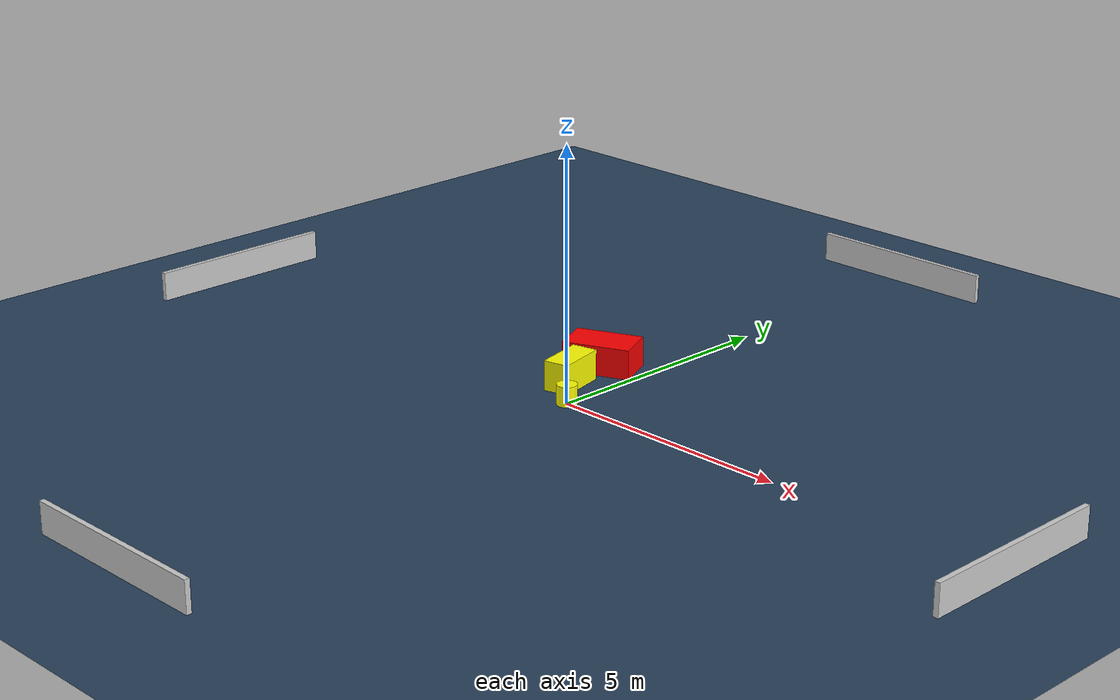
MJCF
<?xml version="1.0" ?>
<mujoco model="generated_environment">
  <option timestep="0.01" integrator="RK4" cone="elliptic"/>
  <default>
    <geom density="1"/>
  </default>
  <asset>
    <texture builtin="gradient" height="3072" name="skybox" rgb1="0.3 0.5 0.7" rgb2="0 0 0" type="skybox" width="512"/>
    <texture builtin="checker" height="300" name="groundplane" rgb1="0.2 0.3 0.4" rgb2="0.1 0.2 0.3" type="2d" width="300"/>
    <material name="groundplane" reflectance="0.2" texrepeat="5 5" texture="groundplane"/>
  </asset>
  <worldbody>
    <light dir="0 0 -1" directional="true" pos="0 0 1.5"/>
    <geom condim="3" friction="0.5 0.005 0.001" material="groundplane" name="floor" pos="0 0 0" size="0 0 0.05" type="plane"/>
    <body name="walls">
      <geom name="wall_1" condim="4" pos="-10.0 0.0 0.3" rgba="0.800000011920929 0.800000011920929 0.800000011920929 1.0" size="0.05 2.0 0.3" type="box"/>
      <geom name="wall_2" condim="4" pos="10.0 0.0 0.3" rgba="0.800000011920929 0.800000011920929 0.800000011920929 1.0" size="0.05 2.0 0.3" type="box"/>
      <geom name="wall_3" condim="4" pos="0.0 -10.0 0.3" rgba="0.800000011920929 0.800000011920929 0.800000011920929 1.0" size="2.0 0.05 0.3" type="box"/>
      <geom name="wall_4" condim="4" pos="0.0 10.0 0.3" rgba="0.800000011920929 0.800000011920929 0.800000011920929 1.0" size="2.0 0.05 0.3" type="box"/>
    </body>
    <body name="robot">
      <joint name="joint_x" type="slide" pos="0 0 0" axis="1 0 0"/>
      <joint name="joint_y" type="slide" pos="0 0 0" axis="0 1 0"/>
      <geom name="robot" type="cylinder" pos="0.0 0.0 0.2" size="0.2 0.2 0.0" mass="5.0" friction="1.0 0.005 0.0001" condim="4" rgba="1.0 1.0 0.0 1.0"/>
    </body>
    <body name="obstacle_1_movable">
      <geom name="obstacle_1_movable" condim="4" pos="-0.6459808682828881 0.7235985146142644 0.3" euler="0 0 102.64563947993403" friction="0.0 0.005 0.001" rgba="1.0 1.0 0.0 1.0" size="0.5093160643391292 0.2582887973282039 0.3" type="box" mass="0.1"/>
      <joint type="free"/>
    </body>
    <body name="obstacle_2_static">
      <geom name="obstacle_2_static" condim="4" pos="-0.8170412877923923 1.7679593520564938 0.3" euler="0 0 113.82090863088635" friction="0.0 0.005 0.001" rgba="1.0 0.0 0.0 1.0" size="0.41066877154503695 0.6809882561484274 0.3" type="box"/>
    </body>
  </worldbody>
  <actuator>
    <motor name="actuator_x" joint="joint_x" gear="1" ctrlrange="-1 1"/>
    <motor name="actuator_y" joint="joint_y" gear="1" ctrlrange="-1 1"/>
  </actuator>
</mujoco>
